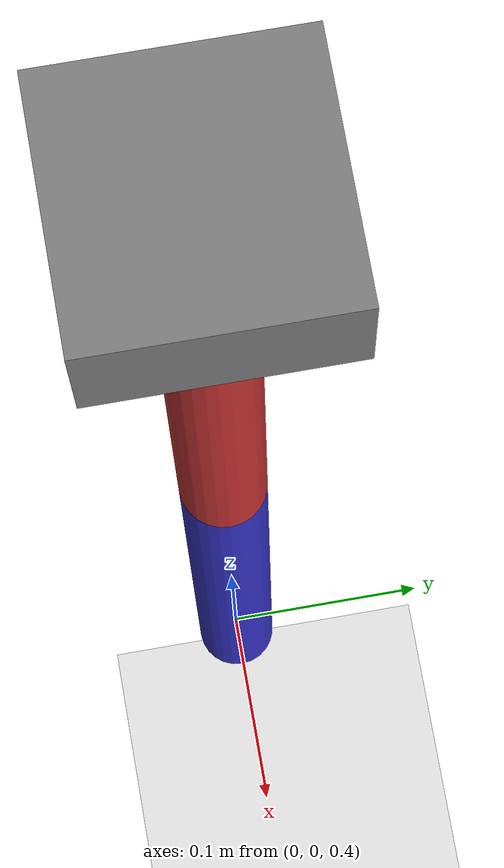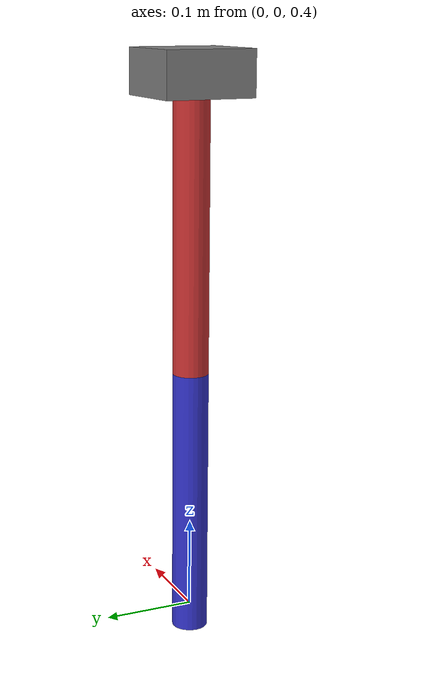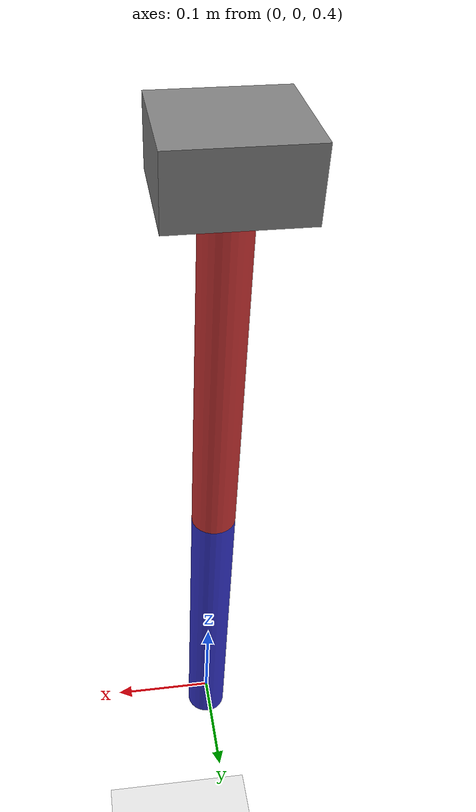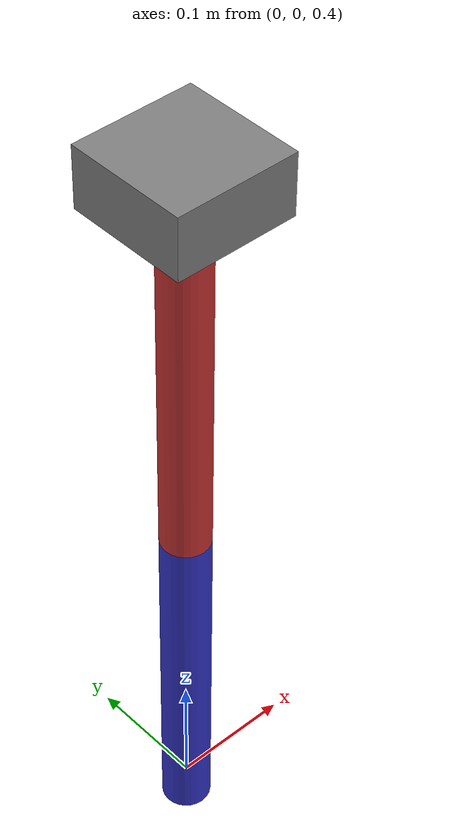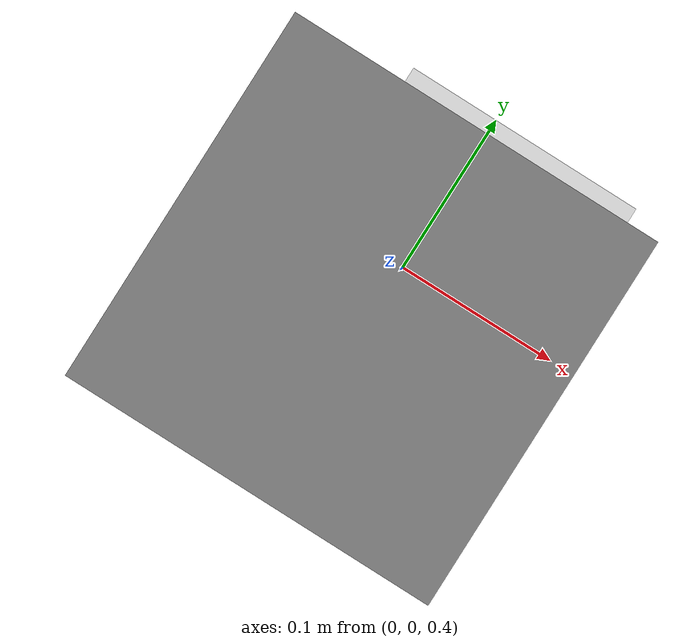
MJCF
<!-- week02 | 2링크 팔 MJCF (함태훈, B1) — URDF 버전과 동일한 기하·질량·관성.
     MJCF는 body 트리 안에 joint를 넣고, inertial을 body 직속으로 쓴다. -->
<mujoco model="two_link_arm">
  <compiler angle="radian"/>
  <option gravity="0 0 -9.81" timestep="0.001"/>

  <default>
    <joint type="hinge" axis="0 1 0" damping="0.1"/>
    <geom type="cylinder" size="0.02 0.15"/>
  </default>

  <worldbody>
    <light pos="0 0 2"/>
    <camera name="side" pos="1.5 -1.5 0.8" xyaxes="1 1 0 0 0 1"/>
    <geom name="floor" type="plane" size="1 1 0.1" pos="0 0 0" rgba="0.9 0.9 0.9 1"/>

    <body name="base_link" pos="0 0 1.0">  <!-- 천장 높이 1 m 에 고정 -->
      <!-- 베이스는 월드에 고정된 body라 자식(upper_arm)과의 부모-자식 충돌 제외가 적용되지 않음 → 충돌 끔 -->
      <geom type="box" size="0.05 0.05 0.025" rgba="0.5 0.5 0.5 1" contype="0" conaffinity="0"/>
      <inertial pos="0 0 0" mass="5.0" diaginertia="0.01 0.01 0.01"/>

      <body name="upper_arm" pos="0 0 -0.025">
        <joint name="shoulder" range="-2.618 2.618"/>
        <geom pos="0 0 -0.15" rgba="0.8 0.2 0.2 1"/>
        <inertial pos="0 0 -0.15" mass="1.0" diaginertia="0.0075 0.0075 0.0002"/>

        <body name="forearm" pos="0 0 -0.3">
          <joint name="elbow" range="-1.047 2.094"/>
          <geom pos="0 0 -0.15" rgba="0.2 0.2 0.8 1"/>
          <inertial pos="0 0 -0.15" mass="1.0" diaginertia="0.0075 0.0075 0.0002"/>
        </body>
      </body>
    </body>
  </worldbody>

  <actuator>
    <position name="shoulder_pos" joint="shoulder" kp="20" ctrlrange="-2.618 2.618" forcerange="-25 25"/>
    <position name="elbow_pos"    joint="elbow"    kp="20" ctrlrange="-1.047 2.094" forcerange="-25 25"/>
  </actuator>
</mujoco>
